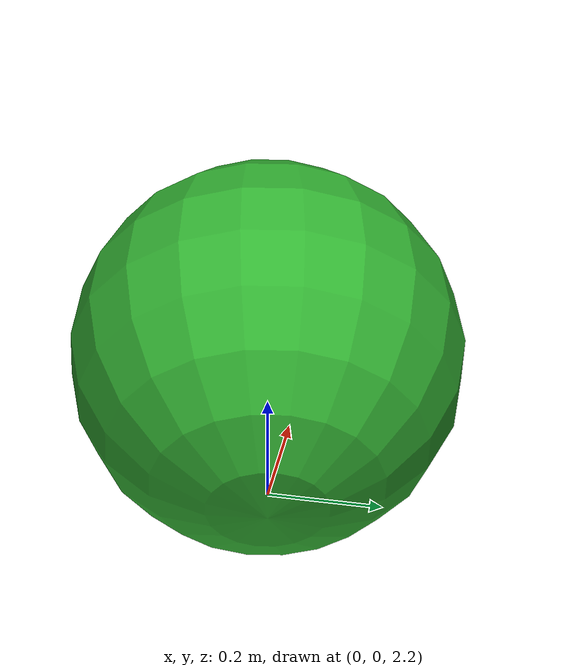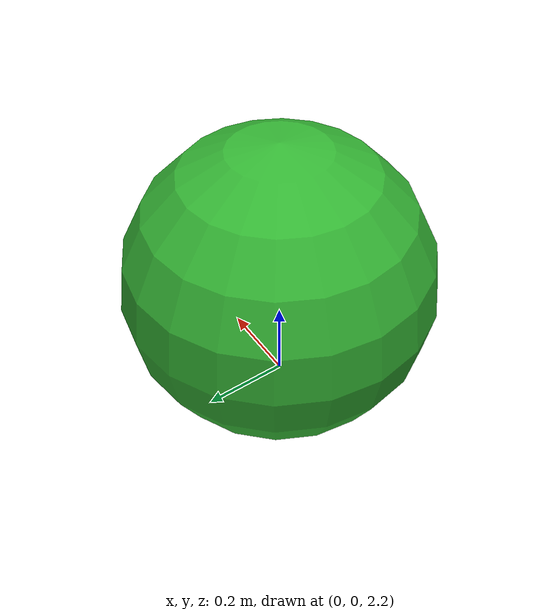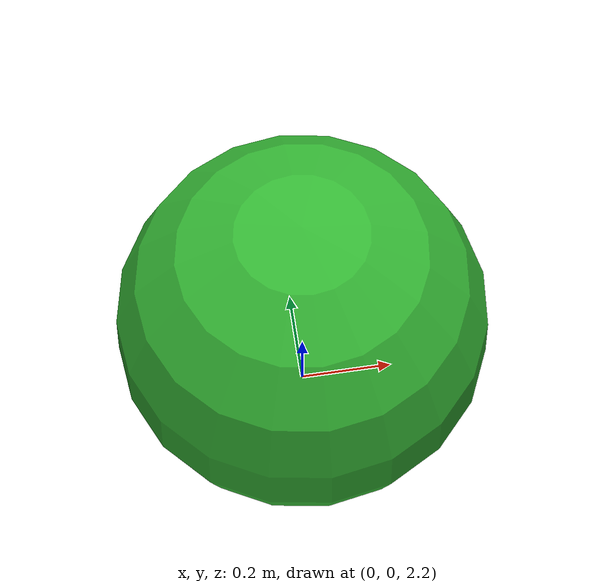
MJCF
<mujoco>
  <option gravity="0 0 -9.81"/>
  <worldbody>
    <body name="surface" pos="0 0 -0.1">
      <geom type="plane" size="25 25 0.1" rgba="1 1 1 1" friction="1.2 1.2 1.2"/>
    </body>
    <body name="rubber_ball" pos="0 0 2.5">
      <geom type="sphere" size="0.35" density="0.95" rgba="0.2 0.7 0.2 1"/>
      <joint name="rubber_joint" type="free"/>
    </body>
  </worldbody>
</mujoco>
